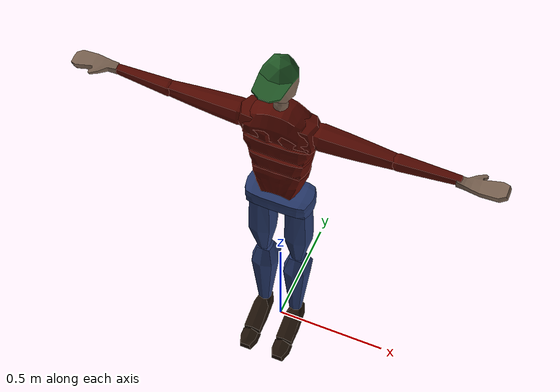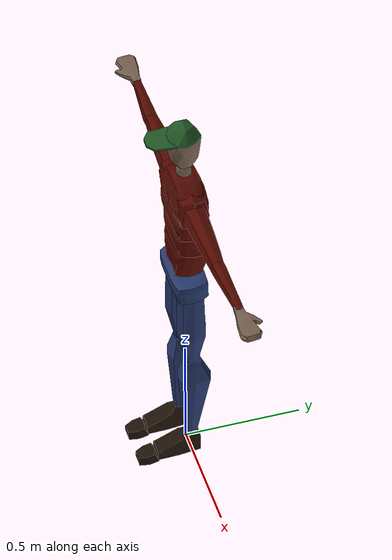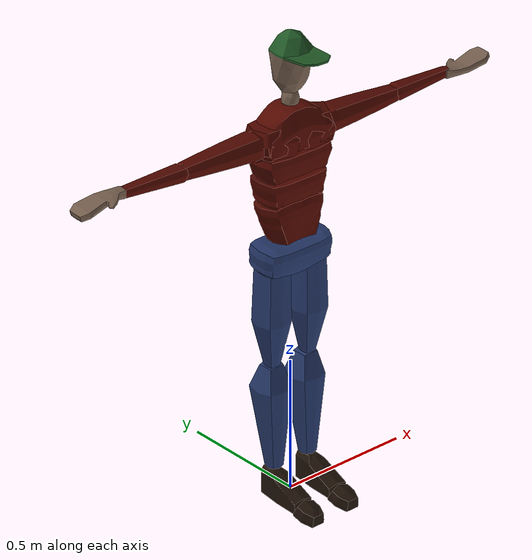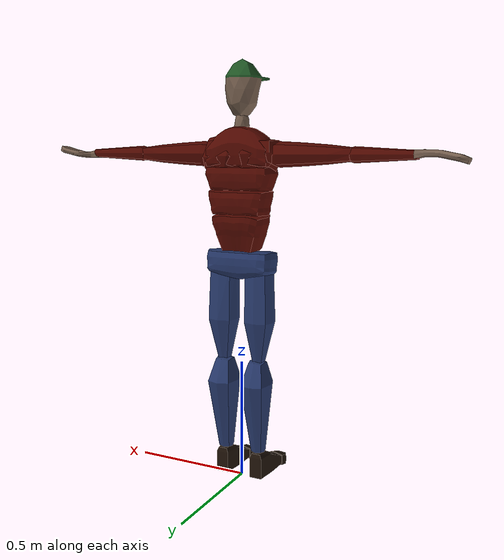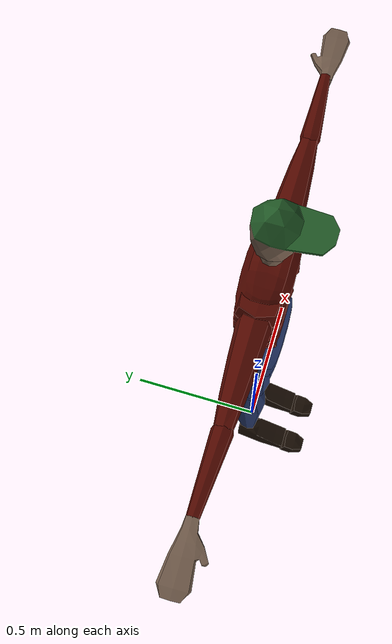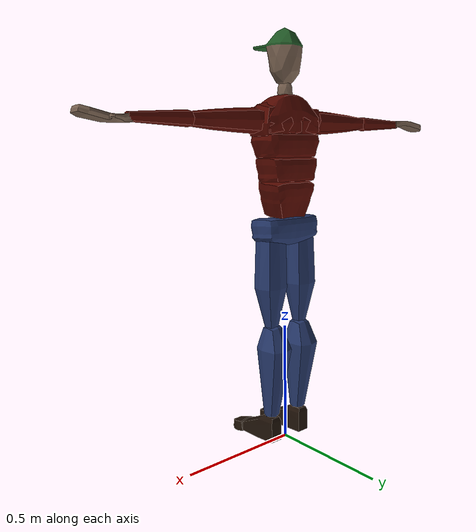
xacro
<?xml version="1.0"?>

<robot name="busy_genius" xmlns:xacro="http://ros.org/wiki/xacro">

    <xacro:macro name="busy_genius_macro">
        <!-- ground position-->
    <link name="world">
    </link>

    <xacro:create_spine/>
    <xacro:create_arms/>
    <xacro:create_legs/>

   </xacro:macro>

    <xacro:macro name="busy_genius_gazebo_macro">
        <gazebo>
            <plugin name="gazebo_ros_control" filename="libgazebo_ros_control.so"><!--FIXME I will need my own ROSCONTROL driver here -->
            <robotSimType>sherpa_rover_control/SherpaRoverHWSim</robotSimType>
                <robotNamespace>/</robotNamespace>
            </plugin>
        </gazebo>
    </xacro:macro>

    <xacro:macro name="create_3dof_link" params="name filename">
        <link name="${name}_x">
            <inertial>
            <mass value="1"/>
                <origin xyz="0 0 0" />
            <inertia
                ixx="1.0" ixy="0.0" ixz="0.0"
                iyy="1.0" iyz="0.0"
                izz="1.0"/>
            </inertial>
        </link>

        <link name="${name}_y">
            <inertial>
            <mass value="1"/>
                <origin xyz="0 0 0" />
            <inertia
                ixx="1.0" ixy="0.0" ixz="0.0"
                iyy="1.0" iyz="0.0"
                izz="1.0"/>
            </inertial>
        </link>

        <link name="${name}_z">
            <inertial>
            <mass value="1"/>
                <origin xyz="0 0 0" />
            <inertia
                ixx="1.0" ixy="0.0" ixz="0.0"
                iyy="1.0" iyz="0.0"
                izz="1.0"/>
            </inertial>

            <visual>
            <origin xyz="0 0 0" rpy="0 0 0"/>
            <geometry>
            <mesh filename="${filename}"/>
            </geometry>
        </visual>
            <collision>
            <origin xyz="0 0 0" rpy="0 0 0"/>
            <geometry>
            <mesh filename="${filename}.stl"/>
            </geometry>
        </collision>
        </link>
    </xacro:macro>

    <xacro:macro name="create_3dof_joint" params="name parent_name *origin">
        <joint name="${name}_joint_x" type="revolute">
            <parent link="${parent_name}"/>
            <child link="${name}_x"/>
            <xacro:insert_block name="origin" />
            <axis xyz="1 0 0"/>
            <dynamics damping="0.7"/>
            <limit effort="100" velocity="10.0" lower="-2" upper="2" />
        </joint>

        <transmission name="trans_${name}_x">
            <type>transmission_interface/SimpleTransmission</type>
            <joint name="${name}_joint_x"/>
            <actuator name="${name}_motor_x">
                <hardwareInterface>PositionJointInterface</hardwareInterface>
                <mechanicalReduction>1</mechanicalReduction>
            </actuator>
        </transmission>

        <joint name="${name}_joint_z" type="revolute">
            <parent link="${name}_x"/>
            <child link="${name}_z"/>
            <origin xyz="0 0 0" rpy="0 0 0" />
            <axis xyz="0 0 1"/>
            <dynamics damping="0.7"/>
            <limit effort="100" velocity="10.0" lower="-2" upper="2" />
        </joint>

        <transmission name="trans_{name}_z">
            <type>transmission_interface/SimpleTransmission</type>
            <joint name="${name}_joint_z"/>
            <actuator name="${name}_motor_z">
                <hardwareInterface>PositionJointInterface</hardwareInterface>
                <mechanicalReduction>1</mechanicalReduction>
            </actuator>
        </transmission>

        <joint name="${name}_joint_y" type="revolute">
            <parent link="${name}_z"/>
            <child link="${name}_y"/>
            <origin xyz="0 0 0" rpy="0 0 0" />
            <axis xyz="0 1 0"/>
            <dynamics damping="0.7"/>
            <limit effort="100" velocity="10.0" lower="-2" upper="2" />
        </joint>

        <transmission name="trans_${name}_y">
            <type>transmission_interface/SimpleTransmission</type>
            <joint name="${name}_joint_y"/>
            <actuator name="${name}_motor_y">
                <hardwareInterface>PositionJointInterface</hardwareInterface>
                <mechanicalReduction>1</mechanicalReduction>
            </actuator>
        </transmission>
    </xacro:macro>

    <xacro:macro name="create_spine">
        <xacro:create_3dof_link name="pelvis" filename="package://sherpa_genius_description/meshes/Hips.dae"/>
        <xacro:create_3dof_link name="l5" filename="package://sherpa_genius_description/meshes/Body1.dae"/>
        <xacro:create_3dof_link name="l3" filename="package://sherpa_genius_description/meshes/Body2.dae"/>
        <xacro:create_3dof_link name="t12" filename="package://sherpa_genius_description/meshes/Body3.dae"/>
        <xacro:create_3dof_link name="t8" filename="package://sherpa_genius_description/meshes/Body4.dae"/>
        <xacro:create_3dof_link name="neck" filename="package://sherpa_genius_description/meshes/Neck.dae"/>
        <xacro:create_3dof_link name="head" filename="package://sherpa_genius_description/meshes/Head.dae"/>

        <xacro:create_3dof_joint name="pelvis" parent_name="world">
            <origin xyz="0 0 0.91" rpy="1.5707 0 0" />
        </xacro:create_3dof_joint>

        <xacro:create_3dof_joint name="l5" parent_name="pelvis_y">
            <origin xyz="0 0.1 0 " rpy="0 0 0" />
        </xacro:create_3dof_joint>
        <xacro:create_3dof_joint name="l3" parent_name="l5_y">
            <origin xyz="0 0.107 0" rpy="0 0 0" />
        </xacro:create_3dof_joint>
        <xacro:create_3dof_joint name="t12" parent_name="l3_y">
            <origin xyz="0 0.097 0" rpy="0 0 0" />
        </xacro:create_3dof_joint>
        <xacro:create_3dof_joint name="t8" parent_name="t12_y">
            <origin xyz="0 0.096 0" rpy="0 0 0" />
        </xacro:create_3dof_joint>
        <xacro:create_3dof_joint name="neck" parent_name="t8_y">
            <origin xyz="0 0.14 0" rpy="0 0 0" />
        </xacro:create_3dof_joint>
        <xacro:create_3dof_joint name="head" parent_name="neck_y">
            <origin xyz="0 0.06 0" rpy="0 0 0" />
        </xacro:create_3dof_joint>
    </xacro:macro>

    <xacro:macro name="create_arms">
        <xacro:create_arm suffix="right" file_suffix="Right">
            <origin xyz="-0.03 -0.09 0" rpy="0 0 1.57" />
        </xacro:create_arm>
        <xacro:create_arm suffix="left" file_suffix="Left">
            <origin xyz="0.03 -0.09 0" rpy="0 0 -1.57" />
        </xacro:create_arm>

    </xacro:macro>

     <xacro:macro name="create_arm" params="suffix file_suffix *origin">
         <!-- right arm -->

        <xacro:create_3dof_link name="${suffix}_shoulder" filename="package://sherpa_genius_description/meshes/Shoulder${file_suffix}.dae"/>

        <xacro:create_3dof_link name="${suffix}_upper_arm" filename="package://sherpa_genius_description/meshes/UpperArm${file_suffix}.dae"/>

        <xacro:create_3dof_link name="${suffix}_lower_arm" filename="package://sherpa_genius_description/meshes/LowerArm${file_suffix}.dae"/>

        <xacro:create_3dof_link name="${suffix}_hand" filename="package://sherpa_genius_description/meshes/Hand${file_suffix}.dae"/>

        <xacro:create_3dof_joint name="${suffix}_shoulder" parent_name="neck_y">
            <xacro:insert_block name="origin" />
        </xacro:create_3dof_joint>
        <xacro:create_3dof_joint name="${suffix}_upper_arm" parent_name="${suffix}_shoulder_y">
            <origin xyz="0 0.14 0" rpy="0 0 0" />
        </xacro:create_3dof_joint>
        <xacro:create_3dof_joint name="${suffix}_lower_arm" parent_name="${suffix}_upper_arm_y">
            <origin xyz="0 0.3 0" rpy="0 0 0" />
        </xacro:create_3dof_joint>
        <xacro:create_3dof_joint name="${suffix}_hand" parent_name="${suffix}_lower_arm_y">
            <origin xyz="0 0.24 0" rpy="0 0 0" />
        </xacro:create_3dof_joint>
    </xacro:macro>

    <xacro:macro name="create_legs">
        <xacro:create_leg suffix="right" file_suffix="Right">
            <origin xyz="-0.079 0 0" rpy="3.14 0 0" />
        </xacro:create_leg>
        <xacro:create_leg suffix="left" file_suffix="Left">
            <origin xyz="0.079 0 0" rpy="3.14 0 0" />
        </xacro:create_leg>

    </xacro:macro>

    <xacro:macro name="create_leg" params="suffix file_suffix *origin">

        <xacro:create_3dof_link name="${suffix}_upper_leg" filename="package://sherpa_genius_description/meshes/UpperLeg${file_suffix}.dae"/>
        <xacro:create_3dof_link name="${suffix}_lower_leg" filename="package://sherpa_genius_description/meshes/LowerLeg${file_suffix}.dae"/>
        <xacro:create_3dof_link name="${suffix}_foot" filename="package://sherpa_genius_description/meshes/Foot${file_suffix}.dae"/>
        <xacro:create_3dof_link name="${suffix}_toe" filename="package://sherpa_genius_description/meshes/Toe${file_suffix}.dae"/>

        <xacro:create_3dof_joint name="${suffix}_upper_leg" parent_name="pelvis_y">
            <xacro:insert_block name="origin" />
        </xacro:create_3dof_joint>
        <xacro:create_3dof_joint name="${suffix}_lower_leg" parent_name="${suffix}_upper_leg_y">
            <origin xyz="0 0.41 0" rpy="0 0 0" />
        </xacro:create_3dof_joint>
        <xacro:create_3dof_joint name="${suffix}_foot" parent_name="${suffix}_lower_leg_y">
            <origin xyz="0. 0.4 0" rpy="-1.15 0 0" />
        </xacro:create_3dof_joint>
        <xacro:create_3dof_joint name="${suffix}_toe" parent_name="${suffix}_foot_y">
            <origin xyz="0 0.18 0" rpy="0 0 0" />
        </xacro:create_3dof_joint>
    </xacro:macro>

    <xacro:busy_genius_macro />
    <xacro:busy_genius_gazebo_macro />

</robot>
